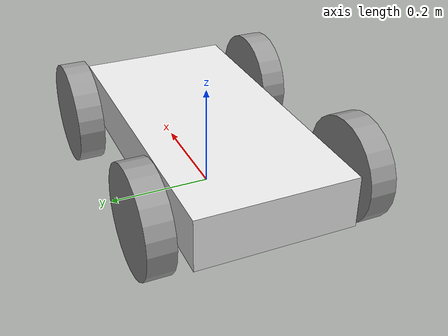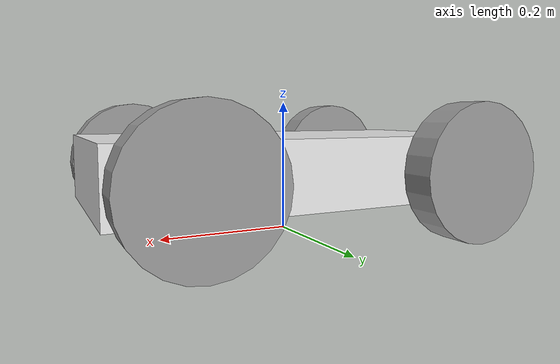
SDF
<?xml version='1.0'?>
<sdf version='1.6'>
  <model name='simple_4_wheeled_white'>
    <link name='chassis'>
      <pose frame=''>-0 0 0.1 0 -0 0</pose>
      <inertial>
        <mass>0.5</mass>
        <inertia>
          <ixx>0.166667</ixx>
          <ixy>0</ixy>
          <ixz>0</ixz>
          <iyy>0.166667</iyy>
          <iyz>0</iyz>
          <izz>0.166667</izz>
        </inertia>
        <pose frame=''>0 0 0 0 -0 0</pose>
      </inertial>
      <self_collide>0</self_collide>
      <kinematic>0</kinematic>
      <gravity>1</gravity>
      <visual name='visual'>
        <pose frame=''>0 0 0 0 -0 0</pose>
        <geometry>
          <box>
            <size>0.6 0.3 0.1</size>
          </box>
        </geometry>
        <material>
          <lighting>1</lighting>
          <script>
            <uri>file://media/materials/scripts/gazebo.material</uri>
            <name>Gazebo/White</name>
          </script>
          <shader type='pixel'>
            <normal_map>__default__</normal_map>
          </shader>
          <ambient>0.9 0.9 0.9 1</ambient>
          <diffuse>0.9 0.9 0.9 1</diffuse>
          <specular>0.9 0.9 0.9 1</specular>
          <emissive>0.9 0.9 0.9 1</emissive>
        </material>
        <transparency>0</transparency>
        <cast_shadows>1</cast_shadows>
      </visual>
      <collision name='collision'>
        <laser_retro>0</laser_retro>
        <max_contacts>10</max_contacts>
        <pose frame=''>0 0 0 0 -0 0</pose>
        <geometry>
          <box>
            <size>0.6 0.3 0.1</size>
          </box>
        </geometry>
        <surface>
          <friction>
            <ode>
              <mu>1</mu>
              <mu2>1</mu2>
              <fdir1>0 0 0</fdir1>
              <slip1>0</slip1>
              <slip2>0</slip2>
            </ode>
            <torsional>
              <coefficient>1</coefficient>
              <patch_radius>0</patch_radius>
              <surface_radius>0</surface_radius>
              <use_patch_radius>1</use_patch_radius>
              <ode>
                <slip>0</slip>
              </ode>
            </torsional>
          </friction>
          <bounce>
            <restitution_coefficient>0</restitution_coefficient>
            <threshold>1e+06</threshold>
          </bounce>
          <contact>
            <collide_without_contact>0</collide_without_contact>
            <collide_without_contact_bitmask>1</collide_without_contact_bitmask>
            <collide_bitmask>1</collide_bitmask>
            <ode>
              <soft_cfm>0</soft_cfm>
              <soft_erp>0.2</soft_erp>
              <kp>1e+13</kp>
              <kd>1</kd>
              <max_vel>0.01</max_vel>
              <min_depth>0</min_depth>
            </ode>
            <bullet>
              <split_impulse>1</split_impulse>
              <split_impulse_penetration_threshold>-0.01</split_impulse_penetration_threshold>
              <soft_cfm>0</soft_cfm>
              <soft_erp>0.2</soft_erp>
              <kp>1e+13</kp>
              <kd>1</kd>
            </bullet>
          </contact>
        </surface>
      </collision>
    </link>
    <link name='front_left'>
      <pose frame=''>0.2 0.2 0.1 1.57 -0 0</pose>
      <inertial>
        <mass>0.1</mass>
        <inertia>
          <ixx>0.145833</ixx>
          <ixy>0</ixy>
          <ixz>0</ixz>
          <iyy>0.145833</iyy>
          <iyz>0</iyz>
          <izz>0.125</izz>
        </inertia>
        <pose frame=''>0 0 0 0 -0 0</pose>
      </inertial>
      <self_collide>0</self_collide>
      <kinematic>0</kinematic>
      <gravity>1</gravity>
      <visual name='visual'>
        <pose frame=''>0 0 0 0 -0 0</pose>
        <geometry>
          <cylinder>
            <radius>0.1</radius>
            <length>0.05</length>
          </cylinder>
        </geometry>
        <material>
          <lighting>1</lighting>
          <script>
            <uri>file://media/materials/scripts/gazebo.material</uri>
            <name>Gazebo/Grey</name>
          </script>
          <shader type='pixel'>
            <normal_map>__default__</normal_map>
          </shader>
          <ambient>0.3 0.3 0.3 1</ambient>
          <diffuse>0.7 0.7 0.7 1</diffuse>
          <specular>0.01 0.01 0.01 1</specular>
          <emissive>0 0 0 1</emissive>
        </material>
        <transparency>0</transparency>
        <cast_shadows>1</cast_shadows>
      </visual>
      <collision name='collision'>
        <laser_retro>0</laser_retro>
        <max_contacts>10</max_contacts>
        <pose frame=''>0 0 0 0 -0 0</pose>
        <geometry>
          <cylinder>
            <radius>0.1</radius>
            <length>0.05</length>
          </cylinder>
        </geometry>
        <surface>
          <friction>
            <ode>
              <mu>1</mu>
              <mu2>1</mu2>
              <fdir1>0 0 0</fdir1>
              <slip1>0</slip1>
              <slip2>0</slip2>
            </ode>
            <torsional>
              <coefficient>1</coefficient>
              <patch_radius>0</patch_radius>
              <surface_radius>0</surface_radius>
              <use_patch_radius>1</use_patch_radius>
              <ode>
                <slip>0</slip>
              </ode>
            </torsional>
          </friction>
          <bounce>
            <restitution_coefficient>0</restitution_coefficient>
            <threshold>1e+06</threshold>
          </bounce>
          <contact>
            <collide_without_contact>0</collide_without_contact>
            <collide_without_contact_bitmask>1</collide_without_contact_bitmask>
            <collide_bitmask>1</collide_bitmask>
            <ode>
              <soft_cfm>0</soft_cfm>
              <soft_erp>0.2</soft_erp>
              <kp>1e+13</kp>
              <kd>1</kd>
              <max_vel>0.01</max_vel>
              <min_depth>0</min_depth>
            </ode>
            <bullet>
              <split_impulse>1</split_impulse>
              <split_impulse_penetration_threshold>-0.01</split_impulse_penetration_threshold>
              <soft_cfm>0</soft_cfm>
              <soft_erp>0.2</soft_erp>
              <kp>1e+13</kp>
              <kd>1</kd>
            </bullet>
          </contact>
        </surface>
      </collision>
    </link>
    <link name='front_right'>
      <pose frame=''>0.2 -0.2 0.1 1.57 -0 0</pose>
      <inertial>
        <mass>0.1</mass>
        <inertia>
          <ixx>0.145833</ixx>
          <ixy>0</ixy>
          <ixz>0</ixz>
          <iyy>0.145833</iyy>
          <iyz>0</iyz>
          <izz>0.125</izz>
        </inertia>
        <pose frame=''>0 0 0 0 -0 0</pose>
      </inertial>
      <self_collide>0</self_collide>
      <kinematic>0</kinematic>
      <gravity>1</gravity>
      <visual name='visual'>
        <pose frame=''>0 0 0 0 -0 0</pose>
        <geometry>
          <cylinder>
            <radius>0.1</radius>
            <length>0.05</length>
          </cylinder>
        </geometry>
        <material>
          <lighting>1</lighting>
          <script>
            <uri>file://media/materials/scripts/gazebo.material</uri>
            <name>Gazebo/Grey</name>
          </script>
          <shader type='pixel'>
            <normal_map>__default__</normal_map>
          </shader>
          <ambient>0.3 0.3 0.3 1</ambient>
          <diffuse>0.7 0.7 0.7 1</diffuse>
          <specular>0.01 0.01 0.01 1</specular>
          <emissive>0 0 0 1</emissive>
        </material>
        <transparency>0</transparency>
        <cast_shadows>1</cast_shadows>
      </visual>
      <collision name='collision'>
        <laser_retro>0</laser_retro>
        <max_contacts>10</max_contacts>
        <pose frame=''>0 0 0 0 -0 0</pose>
        <geometry>
          <cylinder>
            <radius>0.1</radius>
            <length>0.05</length>
          </cylinder>
        </geometry>
        <surface>
          <friction>
            <ode>
              <mu>1</mu>
              <mu2>1</mu2>
              <fdir1>0 0 0</fdir1>
              <slip1>0</slip1>
              <slip2>0</slip2>
            </ode>
            <torsional>
              <coefficient>1</coefficient>
              <patch_radius>0</patch_radius>
              <surface_radius>0</surface_radius>
              <use_patch_radius>1</use_patch_radius>
              <ode>
                <slip>0</slip>
              </ode>
            </torsional>
          </friction>
          <bounce>
            <restitution_coefficient>0</restitution_coefficient>
            <threshold>1e+06</threshold>
          </bounce>
          <contact>
            <collide_without_contact>0</collide_without_contact>
            <collide_without_contact_bitmask>1</collide_without_contact_bitmask>
            <collide_bitmask>1</collide_bitmask>
            <ode>
              <soft_cfm>0</soft_cfm>
              <soft_erp>0.2</soft_erp>
              <kp>1e+13</kp>
              <kd>1</kd>
              <max_vel>0.01</max_vel>
              <min_depth>0</min_depth>
            </ode>
            <bullet>
              <split_impulse>1</split_impulse>
              <split_impulse_penetration_threshold>-0.01</split_impulse_penetration_threshold>
              <soft_cfm>0</soft_cfm>
              <soft_erp>0.2</soft_erp>
              <kp>1e+13</kp>
              <kd>1</kd>
            </bullet>
          </contact>
        </surface>
      </collision>
    </link>
    <link name='rear_left'>
      <pose frame=''>-0.2 0.2 0.1 1.57 -0 0</pose>
      <inertial>
        <mass>0.1</mass>
        <inertia>
          <ixx>0.145833</ixx>
          <ixy>0</ixy>
          <ixz>0</ixz>
          <iyy>0.145833</iyy>
          <iyz>0</iyz>
          <izz>0.125</izz>
        </inertia>
        <pose frame=''>0 0 0 0 -0 0</pose>
      </inertial>
      <self_collide>0</self_collide>
      <kinematic>0</kinematic>
      <gravity>1</gravity>
      <visual name='visual'>
        <pose frame=''>0 0 0 0 -0 0</pose>
        <geometry>
          <cylinder>
            <radius>0.1</radius>
            <length>0.05</length>
          </cylinder>
        </geometry>
        <material>
          <lighting>1</lighting>
          <script>
            <uri>file://media/materials/scripts/gazebo.material</uri>
            <name>Gazebo/Grey</name>
          </script>
          <shader type='pixel'>
            <normal_map>__default__</normal_map>
          </shader>
          <ambient>0.3 0.3 0.3 1</ambient>
          <diffuse>0.7 0.7 0.7 1</diffuse>
          <specular>0.01 0.01 0.01 1</specular>
          <emissive>0 0 0 1</emissive>
        </material>
        <transparency>0</transparency>
        <cast_shadows>1</cast_shadows>
      </visual>
      <collision name='collision'>
        <laser_retro>0</laser_retro>
        <max_contacts>10</max_contacts>
        <pose frame=''>0 0 0 0 -0 0</pose>
        <geometry>
          <cylinder>
            <radius>0.1</radius>
            <length>0.05</length>
          </cylinder>
        </geometry>
        <surface>
          <friction>
            <ode>
              <mu>1</mu>
              <mu2>1</mu2>
              <fdir1>0 0 0</fdir1>
              <slip1>0</slip1>
              <slip2>0</slip2>
            </ode>
            <torsional>
              <coefficient>1</coefficient>
              <patch_radius>0</patch_radius>
              <surface_radius>0</surface_radius>
              <use_patch_radius>1</use_patch_radius>
              <ode>
                <slip>0</slip>
              </ode>
            </torsional>
          </friction>
          <bounce>
            <restitution_coefficient>0</restitution_coefficient>
            <threshold>1e+06</threshold>
          </bounce>
          <contact>
            <collide_without_contact>0</collide_without_contact>
            <collide_without_contact_bitmask>1</collide_without_contact_bitmask>
            <collide_bitmask>1</collide_bitmask>
            <ode>
              <soft_cfm>0</soft_cfm>
              <soft_erp>0.2</soft_erp>
              <kp>1e+13</kp>
              <kd>1</kd>
              <max_vel>0.01</max_vel>
              <min_depth>0</min_depth>
            </ode>
            <bullet>
              <split_impulse>1</split_impulse>
              <split_impulse_penetration_threshold>-0.01</split_impulse_penetration_threshold>
              <soft_cfm>0</soft_cfm>
              <soft_erp>0.2</soft_erp>
              <kp>1e+13</kp>
              <kd>1</kd>
            </bullet>
          </contact>
        </surface>
      </collision>
    </link>
    <link name='rear_right'>
      <pose frame=''>-0.2 -0.2 0.1 1.57 -0 0</pose>
      <inertial>
        <mass>0.1</mass>
        <inertia>
          <ixx>0.145833</ixx>
          <ixy>0</ixy>
          <ixz>0</ixz>
          <iyy>0.145833</iyy>
          <iyz>0</iyz>
          <izz>0.125</izz>
        </inertia>
        <pose frame=''>0 0 0 0 -0 0</pose>
      </inertial>
      <self_collide>0</self_collide>
      <kinematic>0</kinematic>
      <gravity>1</gravity>
      <visual name='visual'>
        <pose frame=''>0 0 0 0 -0 0</pose>
        <geometry>
          <cylinder>
            <radius>0.1</radius>
            <length>0.05</length>
          </cylinder>
        </geometry>
        <material>
          <lighting>1</lighting>
          <script>
            <uri>file://media/materials/scripts/gazebo.material</uri>
            <name>Gazebo/Grey</name>
          </script>
          <shader type='pixel'>
            <normal_map>__default__</normal_map>
          </shader>
          <ambient>0.3 0.3 0.3 1</ambient>
          <diffuse>0.7 0.7 0.7 1</diffuse>
          <specular>0.01 0.01 0.01 1</specular>
          <emissive>0 0 0 1</emissive>
        </material>
        <transparency>0</transparency>
        <cast_shadows>1</cast_shadows>
      </visual>
      <collision name='collision'>
        <laser_retro>0</laser_retro>
        <max_contacts>10</max_contacts>
        <pose frame=''>0 0 0 0 -0 0</pose>
        <geometry>
          <cylinder>
            <radius>0.1</radius>
            <length>0.05</length>
          </cylinder>
        </geometry>
        <surface>
          <friction>
            <ode>
              <mu>1</mu>
              <mu2>1</mu2>
              <fdir1>0 0 0</fdir1>
              <slip1>0</slip1>
              <slip2>0</slip2>
            </ode>
            <torsional>
              <coefficient>1</coefficient>
              <patch_radius>0</patch_radius>
              <surface_radius>0</surface_radius>
              <use_patch_radius>1</use_patch_radius>
              <ode>
                <slip>0</slip>
              </ode>
            </torsional>
          </friction>
          <bounce>
            <restitution_coefficient>0</restitution_coefficient>
            <threshold>1e+06</threshold>
          </bounce>
          <contact>
            <collide_without_contact>0</collide_without_contact>
            <collide_without_contact_bitmask>1</collide_without_contact_bitmask>
            <collide_bitmask>1</collide_bitmask>
            <ode>
              <soft_cfm>0</soft_cfm>
              <soft_erp>0.2</soft_erp>
              <kp>1e+13</kp>
              <kd>1</kd>
              <max_vel>0.01</max_vel>
              <min_depth>0</min_depth>
            </ode>
            <bullet>
              <split_impulse>1</split_impulse>
              <split_impulse_penetration_threshold>-0.01</split_impulse_penetration_threshold>
              <soft_cfm>0</soft_cfm>
              <soft_erp>0.2</soft_erp>
              <kp>1e+13</kp>
              <kd>1</kd>
            </bullet>
          </contact>
        </surface>
      </collision>
    </link>
    <joint name='chassis_front_left' type='revolute'>
      <parent>chassis</parent>
      <child>front_right</child>
      <pose frame=''>0 0 0 0 -0 0</pose>
      <axis>
        <xyz>0 0 1</xyz>
        <use_parent_model_frame>0</use_parent_model_frame>
        <limit>
          <lower>-1.79769e+308</lower>
          <upper>1.79769e+308</upper>
          <effort>-1</effort>
          <velocity>-1</velocity>
        </limit>
        <dynamics>
          <spring_reference>0</spring_reference>
          <spring_stiffness>0</spring_stiffness>
          <damping>0</damping>
          <friction>0</friction>
        </dynamics>
      </axis>
      <physics>
        <ode>
          <limit>
            <cfm>0</cfm>
            <erp>0.2</erp>
          </limit>
          <suspension>
            <cfm>0</cfm>
            <erp>0.2</erp>
          </suspension>
        </ode>
      </physics>
    </joint>
    <joint name='chassis_front_right' type='revolute'>
      <parent>chassis</parent>
      <child>front_left</child>
      <pose frame=''>0 0 0 0 -0 0</pose>
      <axis>
        <xyz>0 0 1</xyz>
        <use_parent_model_frame>0</use_parent_model_frame>
        <limit>
          <lower>-1.79769e+308</lower>
          <upper>1.79769e+308</upper>
          <effort>-1</effort>
          <velocity>-1</velocity>
        </limit>
        <dynamics>
          <spring_reference>0</spring_reference>
          <spring_stiffness>0</spring_stiffness>
          <damping>0</damping>
          <friction>0</friction>
        </dynamics>
      </axis>
      <physics>
        <ode>
          <limit>
            <cfm>0</cfm>
            <erp>0.2</erp>
          </limit>
          <suspension>
            <cfm>0</cfm>
            <erp>0.2</erp>
          </suspension>
        </ode>
      </physics>
    </joint>
    <joint name='chassis_rear_left' type='revolute'>
      <parent>chassis</parent>
      <child>rear_left</child>
      <pose frame=''>0 0 0 0 -0 0</pose>
      <axis>
        <xyz>0 0 1</xyz>
        <use_parent_model_frame>0</use_parent_model_frame>
        <limit>
          <lower>-1.79769e+308</lower>
          <upper>1.79769e+308</upper>
          <effort>-1</effort>
          <velocity>-1</velocity>
        </limit>
        <dynamics>
          <spring_reference>0</spring_reference>
          <spring_stiffness>0</spring_stiffness>
          <damping>0</damping>
          <friction>0</friction>
        </dynamics>
      </axis>
      <physics>
        <ode>
          <limit>
            <cfm>0</cfm>
            <erp>0.2</erp>
          </limit>
          <suspension>
            <cfm>0</cfm>
            <erp>0.2</erp>
          </suspension>
        </ode>
      </physics>
    </joint>
    <joint name='chassis_rear_right' type='revolute'>
      <parent>chassis</parent>
      <child>rear_right</child>
      <pose frame=''>0 0 0 0 -0 0</pose>
      <axis>
        <xyz>0 0 1</xyz>
        <use_parent_model_frame>0</use_parent_model_frame>
        <limit>
          <lower>-1.79769e+308</lower>
          <upper>1.79769e+308</upper>
          <effort>-1</effort>
          <velocity>-1</velocity>
        </limit>
        <dynamics>
          <spring_reference>0</spring_reference>
          <spring_stiffness>0</spring_stiffness>
          <damping>0</damping>
          <friction>0</friction>
        </dynamics>
      </axis>
      <physics>
        <ode>
          <limit>
            <cfm>0</cfm>
            <erp>0.2</erp>
          </limit>
          <suspension>
            <cfm>0</cfm>
            <erp>0.2</erp>
          </suspension>
        </ode>
      </physics>
    </joint>
    <static>0</static>
    <allow_auto_disable>1</allow_auto_disable>
  </model>
</sdf>
